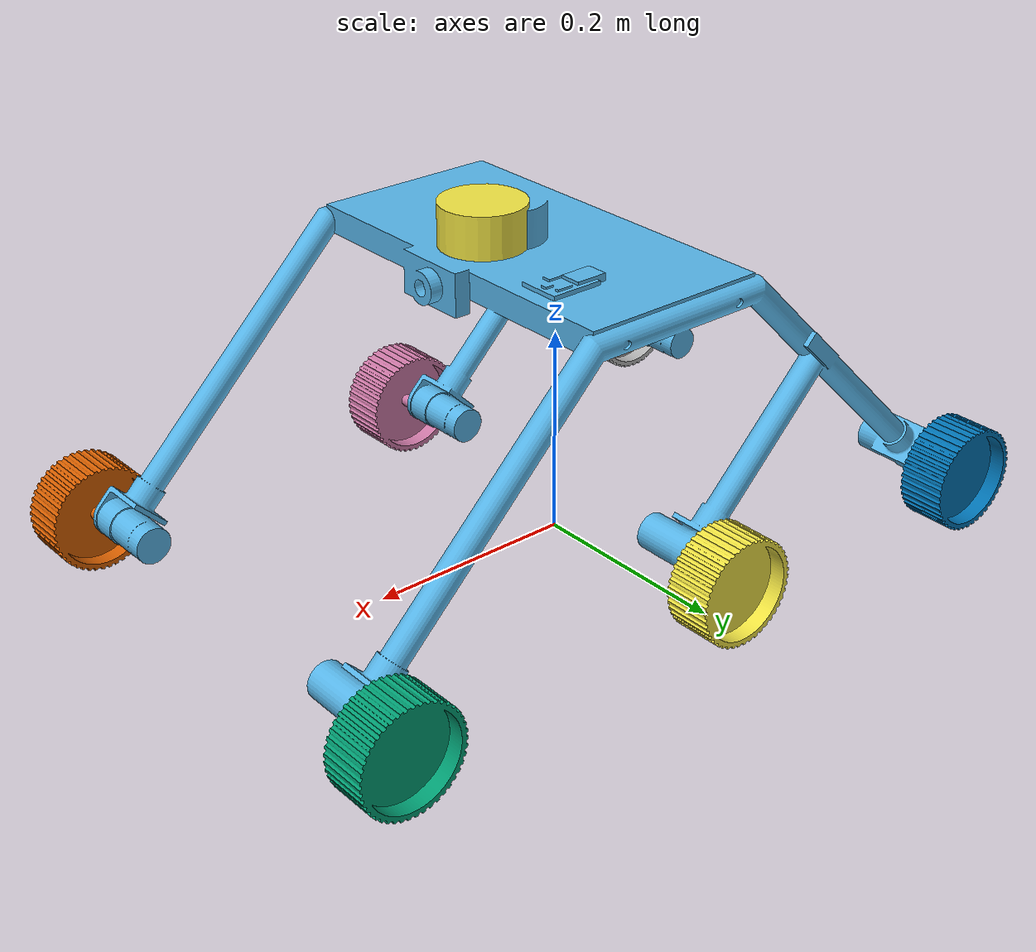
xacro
<?xml version="1.0"?>
<robot name="agribot" xmlns:xacro="http://ros.org/wiki/xacro">

  <!-- Properties -->
  <xacro:include filename="$(find agribot_description)/urdf/properties/agribot.properties.xacro"/>

  <!--Gazebo and ros2 control plugins-->
  <xacro:include filename="$(find agribot_description)/urdf/control/agribot.ros2control.xacro"/>
  <xacro:include filename="$(find agribot_description)/urdf/control/agribot.gazebo.xacro"/>

  <!--Sensors -->
  <xacro:include filename="$(find agribot_description)/urdf/sensors/agribot.sensors.xacro"/>

  <!-- Mech -->
  <xacro:include filename="$(find agribot_description)/urdf/mech/base_mesh.urdf.xacro"/>
  <xacro:include filename="$(find agribot_description)/urdf/mech/wheel_mesh.urdf.xacro"/>

  <!-- Base -->
    <xacro:base_mesh
    mesh_file="${base_mesh_file}"
    mass="${base_mass}"
    com="${base_com}"
    ixx="${base_ixx}" iyy="${base_iyy}" izz="${base_izz}"
    ixy="${base_ixy}" ixz="${base_ixz}" iyz="${base_iyz}"/>

  <!-- Left wheels -->

  <xacro:wheel_mesh mesh_file="${left_wheel_mesh_file}" parent="base_link"
    joint_name="left_wheel_front_joint" link_name="left_wheel_link_front"
    xyz="${lf_xyz}" rpy="${wheel_rpy}" axis="${wheel_axis}"
    mass="${wheel_mass}" com="${wheel_com}"
    ixx="${wheel_ixx}" iyy="${wheel_iyy}" izz="${wheel_izz}"
    ixy="${wheel_ixy}" ixz="${wheel_ixz}" iyz="${wheel_iyz}"/>

  <xacro:wheel_mesh mesh_file="${left_wheel_mesh_file}" parent="base_link"
    joint_name="left_wheel_mid_joint" link_name="left_wheel_link_mid"
    xyz="${lm_xyz}" rpy="${wheel_rpy}" axis="${wheel_axis}"
    mass="${wheel_mass}" com="${wheel_com}"
    ixx="${wheel_ixx}" iyy="${wheel_iyy}" izz="${wheel_izz}"
    ixy="${wheel_ixy}" ixz="${wheel_ixz}" iyz="${wheel_iyz}"/>

  <xacro:wheel_mesh mesh_file="${left_wheel_mesh_file}" parent="base_link"
    joint_name="left_wheel_rear_joint" link_name="left_wheel_link_rear"
    xyz="${lr_xyz}" rpy="${wheel_rpy}" axis="${wheel_axis}"
    mass="${wheel_mass}" com="${wheel_com}"
    ixx="${wheel_ixx}" iyy="${wheel_iyy}" izz="${wheel_izz}"
    ixy="${wheel_ixy}" ixz="${wheel_ixz}" iyz="${wheel_iyz}"/>

  <!-- Right wheels -->
  <xacro:wheel_mesh mesh_file="${right_wheel_mesh_file}" parent="base_link"
    joint_name="right_wheel_front_joint" link_name="right_wheel_link_front"
    xyz="${rf_xyz}" rpy="${wheel_rpy}" axis="${wheel_axis}"
    mass="${wheel_mass}" com="${wheel_com}"
    ixx="${wheel_ixx}" iyy="${wheel_iyy}" izz="${wheel_izz}"
    ixy="${wheel_ixy}" ixz="${wheel_ixz}" iyz="${wheel_iyz}"/>

  <xacro:wheel_mesh mesh_file="${right_wheel_mesh_file}" parent="base_link"
    joint_name="right_wheel_mid_joint" link_name="right_wheel_link_mid"
    xyz="${rm_xyz}" rpy="${wheel_rpy}" axis="${wheel_axis}"
    mass="${wheel_mass}" com="${wheel_com}"
    ixx="${wheel_ixx}" iyy="${wheel_iyy}" izz="${wheel_izz}"
    ixy="${wheel_ixy}" ixz="${wheel_ixz}" iyz="${wheel_iyz}"/>

  <xacro:wheel_mesh mesh_file="${right_wheel_mesh_file}" parent="base_link"
    joint_name="right_wheel_rear_joint" link_name="right_wheel_link_rear"
    xyz="${rr_xyz}" rpy="${wheel_rpy}" axis="${wheel_axis}"
    mass="${wheel_mass}" com="${wheel_com}"
    ixx="${wheel_ixx}" iyy="${wheel_iyy}" izz="${wheel_izz}"
    ixy="${wheel_ixy}" ixz="${wheel_ixz}" iyz="${wheel_iyz}"/>

  <xacro:agribot_sensors/>

</robot>

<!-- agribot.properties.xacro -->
<robot xmlns:xacro="http://ros.org/wiki/xacro">

  <xacro:property name="pkg_share" value="$(find agribot_description)"/>

  <xacro:property name="base_mesh_file"
    value="package://agribot_description/meshes/agribot_baselink.stl"/>

  <xacro:property name="left_wheel_mesh_file"
    value="package://agribot_description/meshes/agribot_left_wheel.stl"/>

  <xacro:property name="right_wheel_mesh_file"
    value="package://agribot_description/meshes/agribot_right_wheel.stl"/>

  <!-- Wheel joint origins (copied from your URDF) -->
  <xacro:property name="lf_xyz" value="0.35606  0.22973 -0.22532" />
  <xacro:property name="lm_xyz" value="0.00635  0.22973 -0.22532" />
  <xacro:property name="lr_xyz" value="-0.29606 0.22973 -0.22532" />

  <xacro:property name="rf_xyz" value="0.35606  -0.22973 -0.22532" />
  <xacro:property name="rm_xyz" value="0.00635  -0.22973 -0.22532" />
  <xacro:property name="rr_xyz" value="-0.29606 -0.22973 -0.22532" />

  <!-- Shared orientation + joint axis -->
  <xacro:property name="wheel_rpy" value="0 0 0"/>
  <xacro:property name="wheel_axis" value="0 1 0"/>

  <!-- For later: controllers/odom math (placeholder until measured) -->
  <xacro:property name="wheel_separation" value="0.51"/>
  <xacro:property name="wheel_radius" value="0.052"/>
    <!-- Base inertial (Fusion -> URDF SI units) -->
  <xacro:property name="base_mass" value="4.248128"/>
  <xacro:property name="base_com"  value="0.02623 -0.000536 -0.042696"/>

  <xacro:property name="base_ixx" value="0.1076"/>
  <xacro:property name="base_iyy" value="0.1189"/>
  <xacro:property name="base_izz" value="0.1484"/>
  <xacro:property name="base_ixy" value="0.000001115543"/>
  <xacro:property name="base_ixz" value="-0.003339"/>
  <xacro:property name="base_iyz" value="0.0002084"/>

  <!-- Wheel inertial -->
  <xacro:property name="wheel_mass" value="0.223669"/>
  <xacro:property name="wheel_com"  value="0 0.001512 0"/>

  <xacro:property name="wheel_ixx" value="0.000183"/>
  <xacro:property name="wheel_iyy" value="0.0003286"/>
  <xacro:property name="wheel_izz" value="0.000183"/>
  <xacro:property name="wheel_ixy" value="0.0"/>
  <xacro:property name="wheel_ixz" value="0.0"/>
  <xacro:property name="wheel_iyz" value="0.0"/>

</robot>

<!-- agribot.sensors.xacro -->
<robot xmlns:xacro="http://ros.org/wiki/xacro">

  <!-- Adds canonical sensor frames attached to base_link -->
  <xacro:macro name="agribot_sensors" params="">

    <!-- ================= IMU ================= -->
    <!-- Canonical IMU frame -->
    <link name="imu_link"/>
    <joint name="imu_joint" type="fixed">
      <!-- Put the IMU where it physically sits on the robot.
           Example values only. Replace with your measured mounting position. -->
      <origin xyz="0.059 0.102 0.027" rpy="0 0 0"/>
      <parent link="base_link"/>
      <child link="imu_link"/>
    </joint>

    <!-- Optional: a simple visual/collision so you can see it in RViz/Gazebo -->
    <link name="imu_link_visual">
      <visual>
        <origin xyz="0 0 0" rpy="0 0 0"/>
        <geometry><box size="0.03 0.02 0.01"/></geometry>
      </visual>
      <collision>
        <origin xyz="0 0 0" rpy="0 0 0"/>
        <geometry><box size="0.03 0.02 0.01"/></geometry>
      </collision>
      <inertial>
        <origin xyz="0 0 0" rpy="0 0 0"/>
        <mass value="0.02"/>
        <inertia ixx="1e-6" iyy="1e-6" izz="1e-6" ixy="0" ixz="0" iyz="0"/>
      </inertial>
    </link>
    <joint name="imu_visual_joint" type="fixed">
      <origin xyz="0 0 0" rpy="0 0 0"/>
      <parent link="imu_link"/>
      <child link="imu_link_visual"/>
    </joint>

    <!-- ================= LiDAR ================= -->
    <!-- Nav2 convention is usually base_laser -->
    <link name="base_laser"/>
    <joint name="base_laser_joint" type="fixed">
      <!-- Example: center-front, slightly up -->
      <origin xyz="0.07 -0.015 0.04" rpy="0 0 0"/>
      <parent link="base_link"/>
      <child link="base_laser"/>
    </joint>

    <!-- Optional visual -->
    <link name="lidar_visual">
      <visual>
        <geometry><cylinder radius="0.04" length="0.05"/></geometry>
      </visual>
      <collision>
        <geometry><cylinder radius="0.04" length="0.05"/></geometry>
      </collision>
      <inertial>
        <mass value="0.05"/>
        <inertia ixx="1e-5" iyy="1e-5" izz="1e-5" ixy="0" ixz="0" iyz="0"/>
      </inertial>
    </link>
    <joint name="lidar_visual_joint" type="fixed">
      <origin xyz="0 0 0" rpy="0 0 0"/>
      <parent link="base_laser"/>
      <child link="lidar_visual"/>
    </joint>

    <!-- ================= Camera ================= -->
    <link name="camera_link"/>
    <link name="camera_optical_frame"/>
    <joint name="camera_joint" type="fixed">
      <origin xyz="0.13 0.0 0.0" rpy="0 0 0"/>
      <parent link="base_link"/>
      <child link="camera_link"/>
    </joint>

    <!-- Optical frame per REP-103 (Z forward, X right, Y down) -->
    <joint name="camera_optical_joint" type="fixed">
      <origin xyz="0 0 0" rpy="-1.57079632679 0 -1.57079632679"/>
      <parent link="camera_link"/>
      <child link="camera_optical_frame"/>
    </joint>

  </xacro:macro>

</robot>

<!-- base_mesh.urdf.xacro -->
<robot xmlns:xacro="http://ros.org/wiki/xacro">

<xacro:macro name="base_mesh" params="
      mesh_file
      mass com
      ixx iyy izz ixy ixz iyz">

    <link name="base_footprint"/>

    <link name="base_link">

      <inertial>
        <origin xyz="${com}" rpy="0 0 0"/>
        <mass value="${mass}"/>
        <inertia
          ixx="${ixx}" iyy="${iyy}" izz="${izz}"
          ixy="${ixy}" ixz="${ixz}" iyz="${iyz}"/>
      </inertial>

      <visual>
        <geometry>
          <mesh filename="${mesh_file}" scale="0.001 0.001 0.001"/>
        </geometry>
      </visual>

      <!--Collision for box of base link-->

      <collision>
        <origin xyz="0 0 0" rpy="0 0 0"/>
        <geometry>
          <box size="0.19986 0.4238 0.0269" />
        </geometry>
      </collision>
      <!--Collision for rocker left side-->
      <collision>
        <origin xyz="0.21986 0.2038 -0.12059" rpy="0 2.255 0"/>
        <geometry>
          <cylinder length="0.3568" radius="0.0119" />
        </geometry>
      </collision>
      <!--Collision for rocker right side-->
      <collision>
        <origin xyz="0.21986 -0.2038 -0.12059" rpy="0 2.255 0"/>
        <geometry>
          <cylinder length="0.3568" radius="0.0119" />
        </geometry>
      </collision>
      <!--Collision for bogie left side-->
      <collision>
        <origin xyz="-0.12493 0.2038 -0.042465" rpy="0 0.785 0"/>
        <geometry>
          <cylinder length="0.10493" radius="0.0119" />
        </geometry>
      </collision>
      <collision>
        <origin xyz="-0.246395 0.2038 -0.16393" rpy="0 0.785 0"/>
        <geometry>
          <cylinder length="0.24293" radius="0.0119" />
        </geometry>
      </collision>
      <collision>
        <origin xyz="-0.086395 0.2038 -0.16393" rpy="0 2.255 0"/>
        <geometry>
          <cylinder length="0.24293" radius="0.0119" />
        </geometry>
      </collision>
      <!--Collision for bogie right side-->
      <collision>
        <origin xyz="-0.12493 -0.2038 -0.042465" rpy="0 0.785 0"/>
        <geometry>
          <cylinder length="0.10493" radius="0.0119" />
        </geometry>
      </collision>
      <collision>
        <origin xyz="-0.246395 -0.2038 -0.16393" rpy="0 0.785 0"/>
        <geometry>
          <cylinder length="0.24293" radius="0.0119" />
        </geometry>
      </collision>
      <collision>
        <origin xyz="-0.086395 -0.2038 -0.16393" rpy="0 2.255 0"/>
        <geometry>
          <cylinder length="0.24293" radius="0.0119" />
        </geometry>
      </collision>

    </link>

    <joint name="base_joint" type="fixed">
      <parent link="base_footprint"/>
      <child link="base_link"/>
      <origin xyz="0 0 0.27431" rpy="0 0 0"/>
    </joint>
  </xacro:macro>

</robot>

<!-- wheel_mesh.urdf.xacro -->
<robot xmlns:xacro="http://ros.org/wiki/xacro">

  <xacro:macro name="wheel_mesh" params="
      mesh_file parent joint_name link_name xyz rpy axis
      mass com
      ixx iyy izz ixy ixz iyz">

    <link name="${link_name}">

      <inertial>
        <origin xyz="${com}" rpy="0 0 0"/>
        <mass value="${mass}"/>
        <inertia
          ixx="${ixx}" iyy="${iyy}" izz="${izz}"
          ixy="${ixy}" ixz="${ixz}" iyz="${iyz}"/>
      </inertial>

      <visual>
        <origin xyz="0 0 0" rpy="0 0 0"/>
        <geometry>
          <mesh filename="${mesh_file}" scale="0.001 0.001 0.001"/>
        </geometry>
      </visual>

      <collision>
        <origin xyz="0 0 0" rpy="1.57 0 0"/>
        <geometry>
          <cylinder length="0.045" radius="0.052" />
        </geometry>
      </collision>

    </link>

    <joint name="${joint_name}" type="continuous">
      <parent link="${parent}"/>
      <child link="${link_name}"/>
      <origin xyz="${xyz}" rpy="${rpy}"/>
      <axis xyz="${axis}"/>
    </joint>
  </xacro:macro>

</robot>
